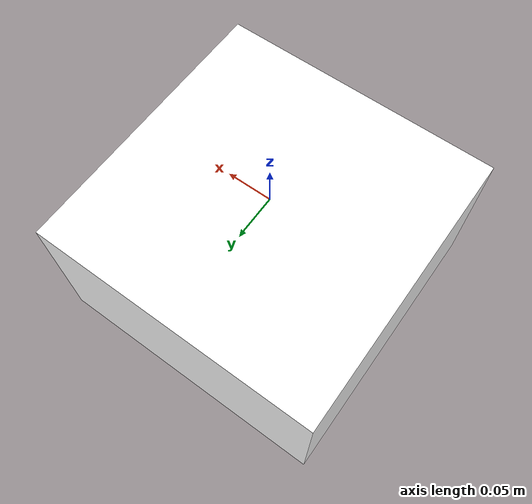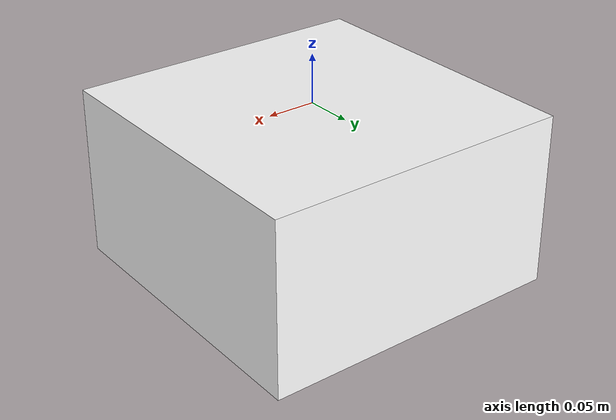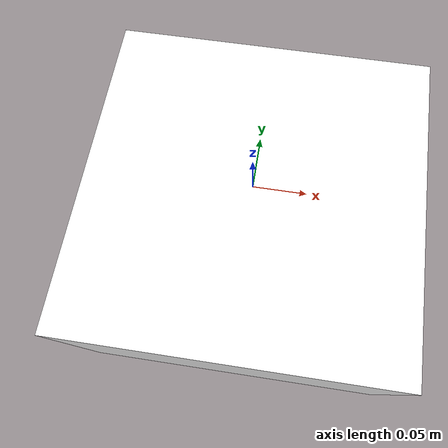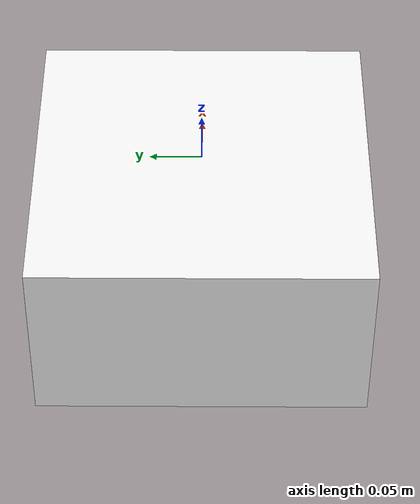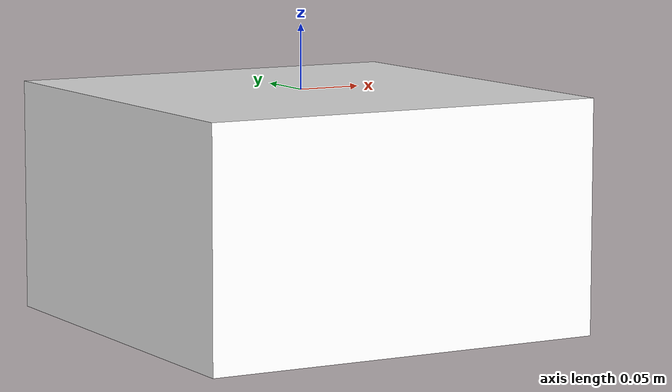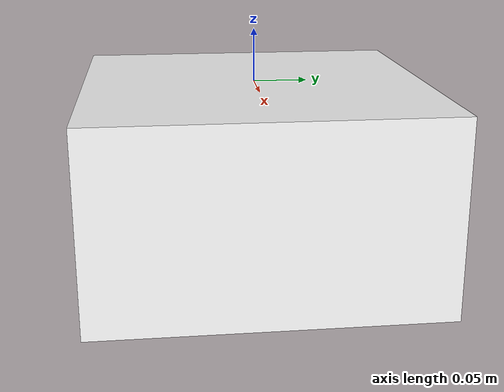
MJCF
<mujoco model="foam">
    <default>
        <geom contype="1" conaffinity="1" friction="0.8 0.8 0.8" />
    </default>

    <asset>
        <material name="white" rgba="1 1 1 1" />
    </asset>

    <worldbody>
        <body name="foam" pos="0 0 0">
            <freejoint name="foam_root"/>
            <geom type="box" size="0.16 0.16 0.09" pos="0 0 -0.09" material="white" mass="0.5"/>
        </body>
    </worldbody>
</mujoco>
